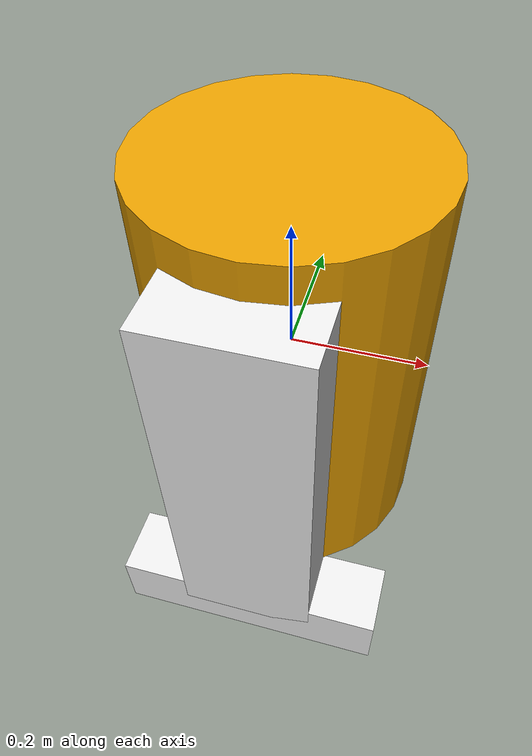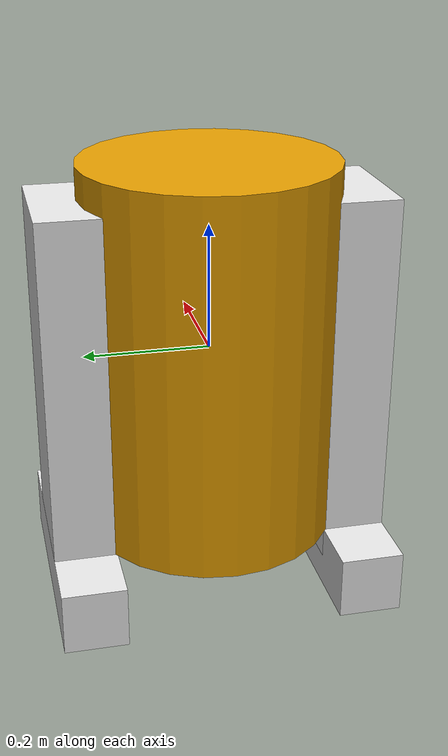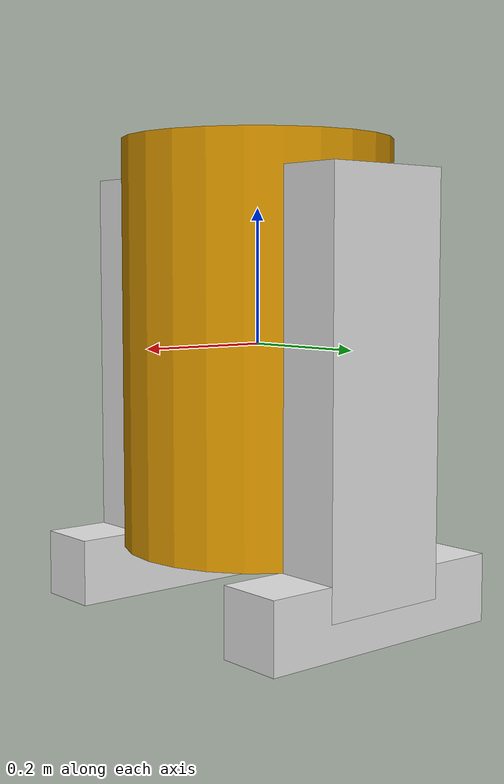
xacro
<?xml version="1.0"?>
<robot xmlns:xacro="http://www.ros.org/wiki/xacro" name="r2d2-Xacro">

    <xacro:property name="pi" value="1.57075"/>

    <!-- Base Link -->

        <link name="base_link">
            <xacro:property name="radius" value="0.2"/>
            <xacro:property name="length" value="0.6"/>

            <visual>
                <geometry>
                    <cylinder radius="${radius}" length="${length}"/>
                </geometry>
            </visual>
        </link>

    <!-- legs -->

        <xacro:macro name="leg" params="prefix reflect">
            <link name="${prefix}leg_link">
                <xacro:property name="dimensions" value="0.6 0.1 0.2"/>

                <visual name="">
                    <geometry>
                        <box size="${dimensions}"/>
                    </geometry>
                    <origin xyz="0.0 0.0 -0.3" rpy="0.0 ${pi} 0.0"/>
                    <material name="white"/>
                </visual>
                <collision>
                    <geometry>
                        <box size="${dimensions}"/>
                    </geometry>
                </collision>
                <inertial>
                    <mass value="10"/>
                    <inertia ixx="0.4" ixy="0.0" ixz="0.0" iyy="0.4" iyz="0.0" izz="0.2"/>
                </inertial>
            </link>

            <joint name="base_to_${prefix}_leg" type="fixed">
                <parent link="base_link"/>
                <child link="${prefix}leg_link"/>
                <origin xyz="0.0 ${reflect*(0.22)} 0.25" rpy="0.0 0.0 0.0"/>
            </joint>
        </xacro:macro>

    <xacro:leg prefix="right" reflect="1"/>
    <xacro:leg prefix="left" reflect="-1"/>

    <!-- leg bases -->

        <xacro:macro name="legbases" params="prefix offset">
            <xacro:property name="dimensions" value="0.4 0.1 0.1"/>

            <link name="${prefix}leg_base_link">
                <visual name="">
                    <geometry>
                        <box size="${dimensions}"/>
                    </geometry>
                    <material name="white"/>
                </visual>
                <collision>
                    <geometry>
                        <box size="${dimensions}"/>
                    </geometry>
                </collision>
                <inertial>
                    <mass value="10"/>
                    <inertia ixx="0.4" ixy="0.0" ixz="0.0" iyy="0.4" iyz="0.0" izz="0.2"/>
                </inertial>
            </link>

            <joint name="${prefix}leg_to_${prefix}base" type="fixed">
                <parent link="${prefix}leg_link"/>
                <child link="${prefix}leg_base_link"/>
                <origin xyz="0.0 0.0 -0.6" rpy="0.0 0.0 0.0"/>
            </joint>
        </xacro:macro>

        <xacro:legbases prefix="left" offset="1"/>
        <xacro:legbases prefix="right" offset="-1"/>

</robot>
